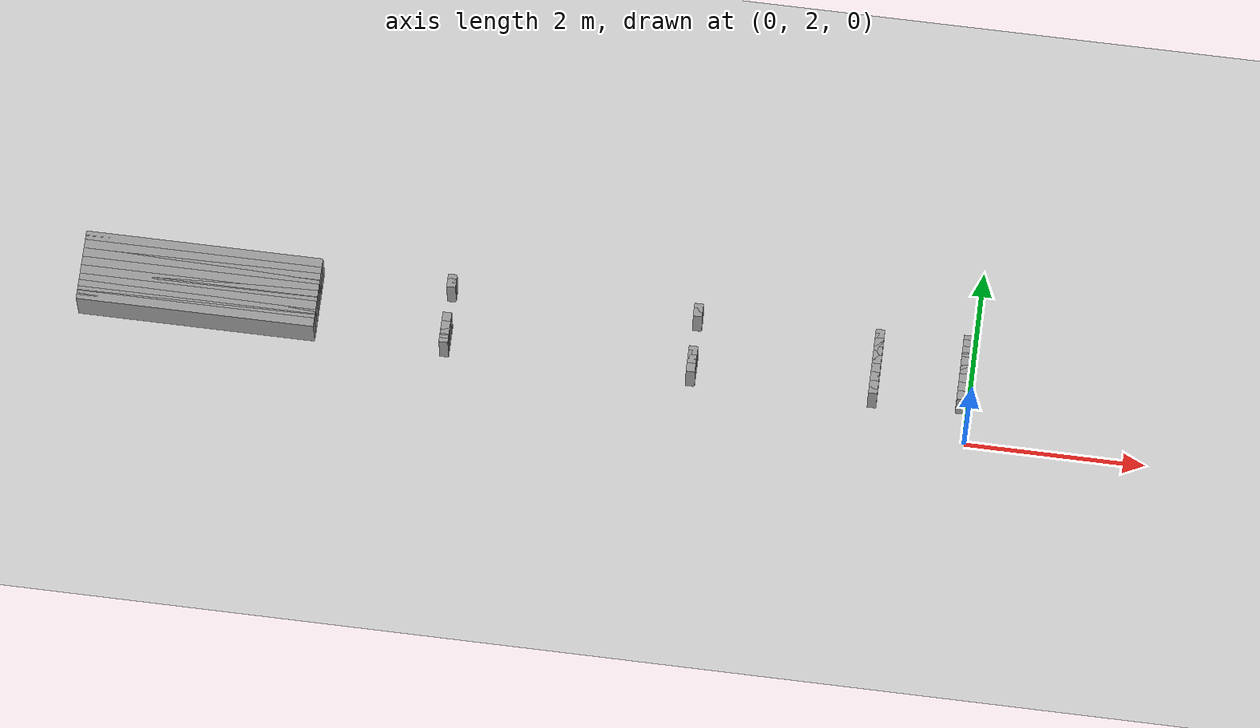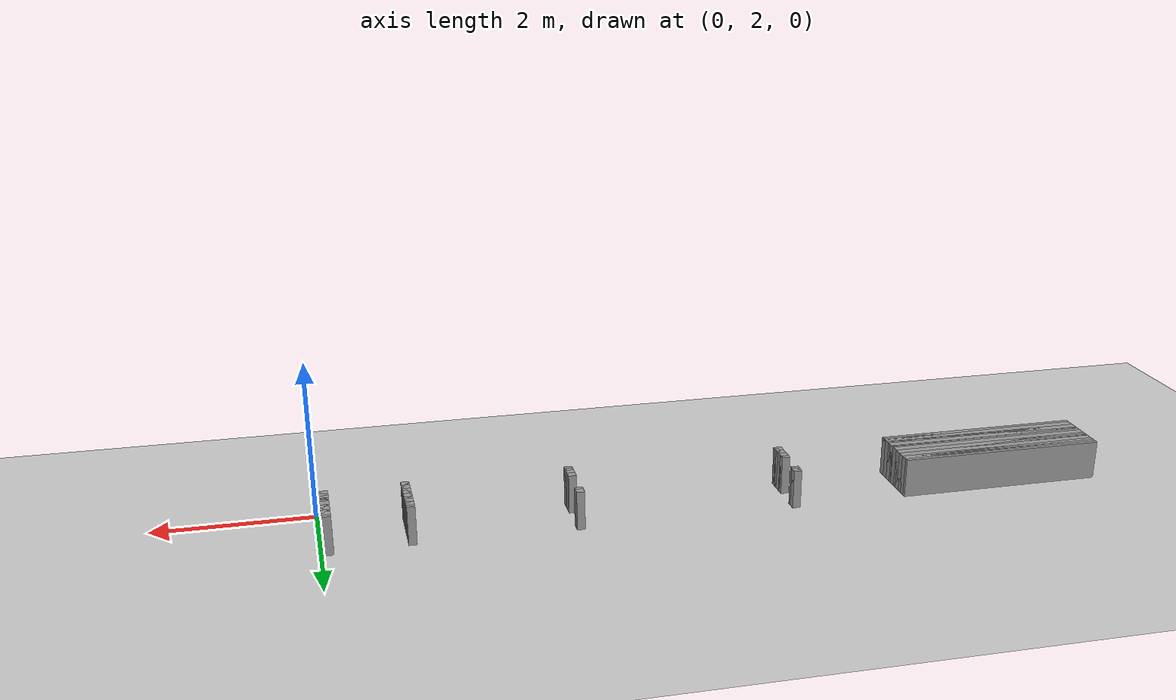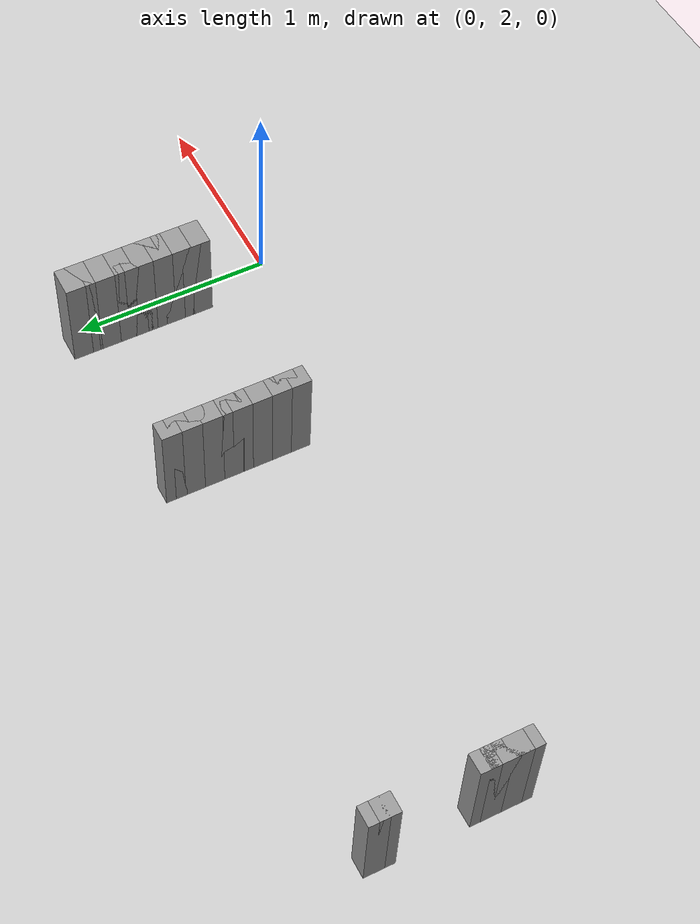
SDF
<sdf version="1.6">
 <world name="GridMap">
  <include><uri>model://sun</uri></include>
  <include><uri>model://ground_plane</uri></include>
  <model name="GridMap">
   <link name="Wall_(21.5,47.0)">
    <collision name="Wall_(21.5,47.0)_Collision">
     <geometry><box><size>0.1 0.1 0.5</size></box></geometry>
     <pose>-1.075 2.35 0.25 0 -0 0</pose>
    </collision>
    <inertial>
     <mass>0.5</mass>
     <pose>0 0.01 0 0 0 0</pose>
     <inertia><ixx>0.004</ixx><ixy>0.001</ixy><ixz>0</ixz><iyy>0.006</iyy><iyz>0</iyz><izz>0.007</izz></inertia>
    </inertial>
    <visual name="Wall_(21.5,47.0)_Visual">
     <geometry><box><size>0.1 0.1 0.5</size></box></geometry>
     <pose>-1.075 2.35 0.25 0 -0 0</pose>
     <material>
      <script><uri>file://media/materials/scripts/gazebo.material</uri><name>Gazebo/Grey</name></script>
      <ambient>1 1 1 1</ambient>
     </material>
     <meta><layer>0</layer></meta>
    </visual>
   </link>
   <link name="Wall_(62.0,47.0)">
    <collision name="Wall_(62.0,47.0)_Collision">
     <geometry><box><size>0.1 0.1 0.5</size></box></geometry>
     <pose>-3.1 2.35 0.25 0 -0 0</pose>
    </collision>
    <inertial>
     <mass>0.5</mass>
     <pose>0 0.01 0 0 0 0</pose>
     <inertia><ixx>0.004</ixx><ixy>0.001</ixy><ixz>0</ixz><iyy>0.006</iyy><iyz>0</iyz><izz>0.007</izz></inertia>
    </inertial>
    <visual name="Wall_(62.0,47.0)_Visual">
     <geometry><box><size>0.1 0.1 0.5</size></box></geometry>
     <pose>-3.1 2.35 0.25 0 -0 0</pose>
     <material>
      <script><uri>file://media/materials/scripts/gazebo.material</uri><name>Gazebo/Grey</name></script>
      <ambient>1 1 1 1</ambient>
     </material>
     <meta><layer>0</layer></meta>
    </visual>
   </link>
   <link name="Wall_(117.0,47.0)">
    <collision name="Wall_(117.0,47.0)_Collision">
     <geometry><box><size>0.1 0.1 0.5</size></box></geometry>
     <pose>-5.8500000000000005 2.35 0.25 0 -0 0</pose>
    </collision>
    <inertial>
     <mass>0.5</mass>
     <pose>0 0.01 0 0 0 0</pose>
     <inertia><ixx>0.004</ixx><ixy>0.001</ixy><ixz>0</ixz><iyy>0.006</iyy><iyz>0</iyz><izz>0.007</izz></inertia>
    </inertial>
    <visual name="Wall_(117.0,47.0)_Visual">
     <geometry><box><size>0.1 0.1 0.5</size></box></geometry>
     <pose>-5.8500000000000005 2.35 0.25 0 -0 0</pose>
     <material>
      <script><uri>file://media/materials/scripts/gazebo.material</uri><name>Gazebo/Grey</name></script>
      <ambient>1 1 1 1</ambient>
     </material>
     <meta><layer>0</layer></meta>
    </visual>
   </link>
   <link name="Wall_(172.5,47.0)">
    <collision name="Wall_(172.5,47.0)_Collision">
     <geometry><box><size>2.6500000000000004 0.1 0.5</size></box></geometry>
     <pose>-8.625 2.35 0.25 0 -0 0</pose>
    </collision>
    <inertial>
     <mass>0.5</mass>
     <pose>0 0.01 0 0 0 0</pose>
     <inertia><ixx>0.004</ixx><ixy>0.001</ixy><ixz>0</ixz><iyy>0.006</iyy><iyz>0</iyz><izz>0.007</izz></inertia>
    </inertial>
    <visual name="Wall_(172.5,47.0)_Visual">
     <geometry><box><size>2.6500000000000004 0.1 0.5</size></box></geometry>
     <pose>-8.625 2.35 0.25 0 -0 0</pose>
     <material>
      <script><uri>file://media/materials/scripts/gazebo.material</uri><name>Gazebo/Grey</name></script>
      <ambient>1 1 1 1</ambient>
     </material>
     <meta><layer>0</layer></meta>
    </visual>
   </link>
   <link name="Wall_(1.5,48.0)">
    <collision name="Wall_(1.5,48.0)_Collision">
     <geometry><box><size>0.15000000000000002 0.1 0.5</size></box></geometry>
     <pose>-0.07500000000000001 2.4000000000000004 0.25 0 -0 0</pose>
    </collision>
    <inertial>
     <mass>0.5</mass>
     <pose>0 0.01 0 0 0 0</pose>
     <inertia><ixx>0.004</ixx><ixy>0.001</ixy><ixz>0</ixz><iyy>0.006</iyy><iyz>0</iyz><izz>0.007</izz></inertia>
    </inertial>
    <visual name="Wall_(1.5,48.0)_Visual">
     <geometry><box><size>0.15000000000000002 0.1 0.5</size></box></geometry>
     <pose>-0.07500000000000001 2.4000000000000004 0.25 0 -0 0</pose>
     <material>
      <script><uri>file://media/materials/scripts/gazebo.material</uri><name>Gazebo/Grey</name></script>
      <ambient>1 1 1 1</ambient>
     </material>
     <meta><layer>0</layer></meta>
    </visual>
   </link>
   <link name="Wall_(21.5,48.0)">
    <collision name="Wall_(21.5,48.0)_Collision">
     <geometry><box><size>0.1 0.1 0.5</size></box></geometry>
     <pose>-1.075 2.4000000000000004 0.25 0 -0 0</pose>
    </collision>
    <inertial>
     <mass>0.5</mass>
     <pose>0 0.01 0 0 0 0</pose>
     <inertia><ixx>0.004</ixx><ixy>0.001</ixy><ixz>0</ixz><iyy>0.006</iyy><iyz>0</iyz><izz>0.007</izz></inertia>
    </inertial>
    <visual name="Wall_(21.5,48.0)_Visual">
     <geometry><box><size>0.1 0.1 0.5</size></box></geometry>
     <pose>-1.075 2.4000000000000004 0.25 0 -0 0</pose>
     <material>
      <script><uri>file://media/materials/scripts/gazebo.material</uri><name>Gazebo/Grey</name></script>
      <ambient>1 1 1 1</ambient>
     </material>
     <meta><layer>0</layer></meta>
    </visual>
   </link>
   <link name="Wall_(62.0,48.0)">
    <collision name="Wall_(62.0,48.0)_Collision">
     <geometry><box><size>0.1 0.1 0.5</size></box></geometry>
     <pose>-3.1 2.4000000000000004 0.25 0 -0 0</pose>
    </collision>
    <inertial>
     <mass>0.5</mass>
     <pose>0 0.01 0 0 0 0</pose>
     <inertia><ixx>0.004</ixx><ixy>0.001</ixy><ixz>0</ixz><iyy>0.006</iyy><iyz>0</iyz><izz>0.007</izz></inertia>
    </inertial>
    <visual name="Wall_(62.0,48.0)_Visual">
     <geometry><box><size>0.1 0.1 0.5</size></box></geometry>
     <pose>-3.1 2.4000000000000004 0.25 0 -0 0</pose>
     <material>
      <script><uri>file://media/materials/scripts/gazebo.material</uri><name>Gazebo/Grey</name></script>
      <ambient>1 1 1 1</ambient>
     </material>
     <meta><layer>0</layer></meta>
    </visual>
   </link>
   <link name="Wall_(117.0,48.0)">
    <collision name="Wall_(117.0,48.0)_Collision">
     <geometry><box><size>0.1 0.1 0.5</size></box></geometry>
     <pose>-5.8500000000000005 2.4000000000000004 0.25 0 -0 0</pose>
    </collision>
    <inertial>
     <mass>0.5</mass>
     <pose>0 0.01 0 0 0 0</pose>
     <inertia><ixx>0.004</ixx><ixy>0.001</ixy><ixz>0</ixz><iyy>0.006</iyy><iyz>0</iyz><izz>0.007</izz></inertia>
    </inertial>
    <visual name="Wall_(117.0,48.0)_Visual">
     <geometry><box><size>0.1 0.1 0.5</size></box></geometry>
     <pose>-5.8500000000000005 2.4000000000000004 0.25 0 -0 0</pose>
     <material>
      <script><uri>file://media/materials/scripts/gazebo.material</uri><name>Gazebo/Grey</name></script>
      <ambient>1 1 1 1</ambient>
     </material>
     <meta><layer>0</layer></meta>
    </visual>
   </link>
   <link name="Wall_(172.5,48.0)">
    <collision name="Wall_(172.5,48.0)_Collision">
     <geometry><box><size>2.6500000000000004 0.1 0.5</size></box></geometry>
     <pose>-8.625 2.4000000000000004 0.25 0 -0 0</pose>
    </collision>
    <inertial>
     <mass>0.5</mass>
     <pose>0 0.01 0 0 0 0</pose>
     <inertia><ixx>0.004</ixx><ixy>0.001</ixy><ixz>0</ixz><iyy>0.006</iyy><iyz>0</iyz><izz>0.007</izz></inertia>
    </inertial>
    <visual name="Wall_(172.5,48.0)_Visual">
     <geometry><box><size>2.6500000000000004 0.1 0.5</size></box></geometry>
     <pose>-8.625 2.4000000000000004 0.25 0 -0 0</pose>
     <material>
      <script><uri>file://media/materials/scripts/gazebo.material</uri><name>Gazebo/Grey</name></script>
      <ambient>1 1 1 1</ambient>
     </material>
     <meta><layer>0</layer></meta>
    </visual>
   </link>
   <link name="Wall_(1.5,49.0)">
    <collision name="Wall_(1.5,49.0)_Collision">
     <geometry><box><size>0.15000000000000002 0.1 0.5</size></box></geometry>
     <pose>-0.07500000000000001 2.45 0.25 0 -0 0</pose>
    </collision>
    <inertial>
     <mass>0.5</mass>
     <pose>0 0.01 0 0 0 0</pose>
     <inertia><ixx>0.004</ixx><ixy>0.001</ixy><ixz>0</ixz><iyy>0.006</iyy><iyz>0</iyz><izz>0.007</izz></inertia>
    </inertial>
    <visual name="Wall_(1.5,49.0)_Visual">
     <geometry><box><size>0.15000000000000002 0.1 0.5</size></box></geometry>
     <pose>-0.07500000000000001 2.45 0.25 0 -0 0</pose>
     <material>
      <script><uri>file://media/materials/scripts/gazebo.material</uri><name>Gazebo/Grey</name></script>
      <ambient>1 1 1 1</ambient>
     </material>
     <meta><layer>0</layer></meta>
    </visual>
   </link>
   <link name="Wall_(21.5,49.0)">
    <collision name="Wall_(21.5,49.0)_Collision">
     <geometry><box><size>0.1 0.1 0.5</size></box></geometry>
     <pose>-1.075 2.45 0.25 0 -0 0</pose>
    </collision>
    <inertial>
     <mass>0.5</mass>
     <pose>0 0.01 0 0 0 0</pose>
     <inertia><ixx>0.004</ixx><ixy>0.001</ixy><ixz>0</ixz><iyy>0.006</iyy><iyz>0</iyz><izz>0.007</izz></inertia>
    </inertial>
    <visual name="Wall_(21.5,49.0)_Visual">
     <geometry><box><size>0.1 0.1 0.5</size></box></geometry>
     <pose>-1.075 2.45 0.25 0 -0 0</pose>
     <material>
      <script><uri>file://media/materials/scripts/gazebo.material</uri><name>Gazebo/Grey</name></script>
      <ambient>1 1 1 1</ambient>
     </material>
     <meta><layer>0</layer></meta>
    </visual>
   </link>
   <link name="Wall_(62.0,49.0)">
    <collision name="Wall_(62.0,49.0)_Collision">
     <geometry><box><size>0.1 0.1 0.5</size></box></geometry>
     <pose>-3.1 2.45 0.25 0 -0 0</pose>
    </collision>
    <inertial>
     <mass>0.5</mass>
     <pose>0 0.01 0 0 0 0</pose>
     <inertia><ixx>0.004</ixx><ixy>0.001</ixy><ixz>0</ixz><iyy>0.006</iyy><iyz>0</iyz><izz>0.007</izz></inertia>
    </inertial>
    <visual name="Wall_(62.0,49.0)_Visual">
     <geometry><box><size>0.1 0.1 0.5</size></box></geometry>
     <pose>-3.1 2.45 0.25 0 -0 0</pose>
     <material>
      <script><uri>file://media/materials/scripts/gazebo.material</uri><name>Gazebo/Grey</name></script>
      <ambient>1 1 1 1</ambient>
     </material>
     <meta><layer>0</layer></meta>
    </visual>
   </link>
   <link name="Wall_(117.0,49.0)">
    <collision name="Wall_(117.0,49.0)_Collision">
     <geometry><box><size>0.1 0.1 0.5</size></box></geometry>
     <pose>-5.8500000000000005 2.45 0.25 0 -0 0</pose>
    </collision>
    <inertial>
     <mass>0.5</mass>
     <pose>0 0.01 0 0 0 0</pose>
     <inertia><ixx>0.004</ixx><ixy>0.001</ixy><ixz>0</ixz><iyy>0.006</iyy><iyz>0</iyz><izz>0.007</izz></inertia>
    </inertial>
    <visual name="Wall_(117.0,49.0)_Visual">
     <geometry><box><size>0.1 0.1 0.5</size></box></geometry>
     <pose>-5.8500000000000005 2.45 0.25 0 -0 0</pose>
     <material>
      <script><uri>file://media/materials/scripts/gazebo.material</uri><name>Gazebo/Grey</name></script>
      <ambient>1 1 1 1</ambient>
     </material>
     <meta><layer>0</layer></meta>
    </visual>
   </link>
   <link name="Wall_(172.5,49.0)">
    <collision name="Wall_(172.5,49.0)_Collision">
     <geometry><box><size>2.6500000000000004 0.1 0.5</size></box></geometry>
     <pose>-8.625 2.45 0.25 0 -0 0</pose>
    </collision>
    <inertial>
     <mass>0.5</mass>
     <pose>0 0.01 0 0 0 0</pose>
     <inertia><ixx>0.004</ixx><ixy>0.001</ixy><ixz>0</ixz><iyy>0.006</iyy><iyz>0</iyz><izz>0.007</izz></inertia>
    </inertial>
    <visual name="Wall_(172.5,49.0)_Visual">
     <geometry><box><size>2.6500000000000004 0.1 0.5</size></box></geometry>
     <pose>-8.625 2.45 0.25 0 -0 0</pose>
     <material>
      <script><uri>file://media/materials/scripts/gazebo.material</uri><name>Gazebo/Grey</name></script>
      <ambient>1 1 1 1</ambient>
     </material>
     <meta><layer>0</layer></meta>
    </visual>
   </link>
   <link name="Wall_(1.5,50.0)">
    <collision name="Wall_(1.5,50.0)_Collision">
     <geometry><box><size>0.15000000000000002 0.1 0.5</size></box></geometry>
     <pose>-0.07500000000000001 2.5 0.25 0 -0 0</pose>
    </collision>
    <inertial>
     <mass>0.5</mass>
     <pose>0 0.01 0 0 0 0</pose>
     <inertia><ixx>0.004</ixx><ixy>0.001</ixy><ixz>0</ixz><iyy>0.006</iyy><iyz>0</iyz><izz>0.007</izz></inertia>
    </inertial>
    <visual name="Wall_(1.5,50.0)_Visual">
     <geometry><box><size>0.15000000000000002 0.1 0.5</size></box></geometry>
     <pose>-0.07500000000000001 2.5 0.25 0 -0 0</pose>
     <material>
      <script><uri>file://media/materials/scripts/gazebo.material</uri><name>Gazebo/Grey</name></script>
      <ambient>1 1 1 1</ambient>
     </material>
     <meta><layer>0</layer></meta>
    </visual>
   </link>
   <link name="Wall_(21.5,50.0)">
    <collision name="Wall_(21.5,50.0)_Collision">
     <geometry><box><size>0.1 0.1 0.5</size></box></geometry>
     <pose>-1.075 2.5 0.25 0 -0 0</pose>
    </collision>
    <inertial>
     <mass>0.5</mass>
     <pose>0 0.01 0 0 0 0</pose>
     <inertia><ixx>0.004</ixx><ixy>0.001</ixy><ixz>0</ixz><iyy>0.006</iyy><iyz>0</iyz><izz>0.007</izz></inertia>
    </inertial>
    <visual name="Wall_(21.5,50.0)_Visual">
     <geometry><box><size>0.1 0.1 0.5</size></box></geometry>
     <pose>-1.075 2.5 0.25 0 -0 0</pose>
     <material>
      <script><uri>file://media/materials/scripts/gazebo.material</uri><name>Gazebo/Grey</name></script>
      <ambient>1 1 1 1</ambient>
     </material>
     <meta><layer>0</layer></meta>
    </visual>
   </link>
   <link name="Wall_(62.0,50.0)">
    <collision name="Wall_(62.0,50.0)_Collision">
     <geometry><box><size>0.1 0.1 0.5</size></box></geometry>
     <pose>-3.1 2.5 0.25 0 -0 0</pose>
    </collision>
    <inertial>
     <mass>0.5</mass>
     <pose>0 0.01 0 0 0 0</pose>
     <inertia><ixx>0.004</ixx><ixy>0.001</ixy><ixz>0</ixz><iyy>0.006</iyy><iyz>0</iyz><izz>0.007</izz></inertia>
    </inertial>
    <visual name="Wall_(62.0,50.0)_Visual">
     <geometry><box><size>0.1 0.1 0.5</size></box></geometry>
     <pose>-3.1 2.5 0.25 0 -0 0</pose>
     <material>
      <script><uri>file://media/materials/scripts/gazebo.material</uri><name>Gazebo/Grey</name></script>
      <ambient>1 1 1 1</ambient>
     </material>
     <meta><layer>0</layer></meta>
    </visual>
   </link>
   <link name="Wall_(117.0,50.0)">
    <collision name="Wall_(117.0,50.0)_Collision">
     <geometry><box><size>0.1 0.1 0.5</size></box></geometry>
     <pose>-5.8500000000000005 2.5 0.25 0 -0 0</pose>
    </collision>
    <inertial>
     <mass>0.5</mass>
     <pose>0 0.01 0 0 0 0</pose>
     <inertia><ixx>0.004</ixx><ixy>0.001</ixy><ixz>0</ixz><iyy>0.006</iyy><iyz>0</iyz><izz>0.007</izz></inertia>
    </inertial>
    <visual name="Wall_(117.0,50.0)_Visual">
     <geometry><box><size>0.1 0.1 0.5</size></box></geometry>
     <pose>-5.8500000000000005 2.5 0.25 0 -0 0</pose>
     <material>
      <script><uri>file://media/materials/scripts/gazebo.material</uri><name>Gazebo/Grey</name></script>
      <ambient>1 1 1 1</ambient>
     </material>
     <meta><layer>0</layer></meta>
    </visual>
   </link>
   <link name="Wall_(172.5,50.0)">
    <collision name="Wall_(172.5,50.0)_Collision">
     <geometry><box><size>2.6500000000000004 0.1 0.5</size></box></geometry>
     <pose>-8.625 2.5 0.25 0 -0 0</pose>
    </collision>
    <inertial>
     <mass>0.5</mass>
     <pose>0 0.01 0 0 0 0</pose>
     <inertia><ixx>0.004</ixx><ixy>0.001</ixy><ixz>0</ixz><iyy>0.006</iyy><iyz>0</iyz><izz>0.007</izz></inertia>
    </inertial>
    <visual name="Wall_(172.5,50.0)_Visual">
     <geometry><box><size>2.6500000000000004 0.1 0.5</size></box></geometry>
     <pose>-8.625 2.5 0.25 0 -0 0</pose>
     <material>
      <script><uri>file://media/materials/scripts/gazebo.material</uri><name>Gazebo/Grey</name></script>
      <ambient>1 1 1 1</ambient>
     </material>
     <meta><layer>0</layer></meta>
    </visual>
   </link>
   <link name="Wall_(1.5,51.0)">
    <collision name="Wall_(1.5,51.0)_Collision">
     <geometry><box><size>0.15000000000000002 0.1 0.5</size></box></geometry>
     <pose>-0.07500000000000001 2.5500000000000003 0.25 0 -0 0</pose>
    </collision>
    <inertial>
     <mass>0.5</mass>
     <pose>0 0.01 0 0 0 0</pose>
     <inertia><ixx>0.004</ixx><ixy>0.001</ixy><ixz>0</ixz><iyy>0.006</iyy><iyz>0</iyz><izz>0.007</izz></inertia>
    </inertial>
    <visual name="Wall_(1.5,51.0)_Visual">
     <geometry><box><size>0.15000000000000002 0.1 0.5</size></box></geometry>
     <pose>-0.07500000000000001 2.5500000000000003 0.25 0 -0 0</pose>
     <material>
      <script><uri>file://media/materials/scripts/gazebo.material</uri><name>Gazebo/Grey</name></script>
      <ambient>1 1 1 1</ambient>
     </material>
     <meta><layer>0</layer></meta>
    </visual>
   </link>
   <link name="Wall_(21.5,51.0)">
    <collision name="Wall_(21.5,51.0)_Collision">
     <geometry><box><size>0.1 0.1 0.5</size></box></geometry>
     <pose>-1.075 2.5500000000000003 0.25 0 -0 0</pose>
    </collision>
    <inertial>
     <mass>0.5</mass>
     <pose>0 0.01 0 0 0 0</pose>
     <inertia><ixx>0.004</ixx><ixy>0.001</ixy><ixz>0</ixz><iyy>0.006</iyy><iyz>0</iyz><izz>0.007</izz></inertia>
    </inertial>
    <visual name="Wall_(21.5,51.0)_Visual">
     <geometry><box><size>0.1 0.1 0.5</size></box></geometry>
     <pose>-1.075 2.5500000000000003 0.25 0 -0 0</pose>
     <material>
      <script><uri>file://media/materials/scripts/gazebo.material</uri><name>Gazebo/Grey</name></script>
      <ambient>1 1 1 1</ambient>
     </material>
     <meta><layer>0</layer></meta>
    </visual>
   </link>
   <link name="Wall_(62.0,51.0)">
    <collision name="Wall_(62.0,51.0)_Collision">
     <geometry><box><size>0.1 0.1 0.5</size></box></geometry>
     <pose>-3.1 2.5500000000000003 0.25 0 -0 0</pose>
    </collision>
    <inertial>
     <mass>0.5</mass>
     <pose>0 0.01 0 0 0 0</pose>
     <inertia><ixx>0.004</ixx><ixy>0.001</ixy><ixz>0</ixz><iyy>0.006</iyy><iyz>0</iyz><izz>0.007</izz></inertia>
    </inertial>
    <visual name="Wall_(62.0,51.0)_Visual">
     <geometry><box><size>0.1 0.1 0.5</size></box></geometry>
     <pose>-3.1 2.5500000000000003 0.25 0 -0 0</pose>
     <material>
      <script><uri>file://media/materials/scripts/gazebo.material</uri><name>Gazebo/Grey</name></script>
      <ambient>1 1 1 1</ambient>
     </material>
     <meta><layer>0</layer></meta>
    </visual>
   </link>
   <link name="Wall_(117.0,51.0)">
    <collision name="Wall_(117.0,51.0)_Collision">
     <geometry><box><size>0.1 0.1 0.5</size></box></geometry>
     <pose>-5.8500000000000005 2.5500000000000003 0.25 0 -0 0</pose>
    </collision>
    <inertial>
     <mass>0.5</mass>
     <pose>0 0.01 0 0 0 0</pose>
     <inertia><ixx>0.004</ixx><ixy>0.001</ixy><ixz>0</ixz><iyy>0.006</iyy><iyz>0</iyz><izz>0.007</izz></inertia>
    </inertial>
    <visual name="Wall_(117.0,51.0)_Visual">
     <geometry><box><size>0.1 0.1 0.5</size></box></geometry>
     <pose>-5.8500000000000005 2.5500000000000003 0.25 0 -0 0</pose>
     <material>
      <script><uri>file://media/materials/scripts/gazebo.material</uri><name>Gazebo/Grey</name></script>
      <ambient>1 1 1 1</ambient>
     </material>
     <meta><layer>0</layer></meta>
    </visual>
   </link>
   <link name="Wall_(172.5,51.0)">
    <collision name="Wall_(172.5,51.0)_Collision">
     <geometry><box><size>2.6500000000000004 0.1 0.5</size></box></geometry>
     <pose>-8.625 2.5500000000000003 0.25 0 -0 0</pose>
    </collision>
    <inertial>
     <mass>0.5</mass>
     <pose>0 0.01 0 0 0 0</pose>
     <inertia><ixx>0.004</ixx><ixy>0.001</ixy><ixz>0</ixz><iyy>0.006</iyy><iyz>0</iyz><izz>0.007</izz></inertia>
    </inertial>
    <visual name="Wall_(172.5,51.0)_Visual">
     <geometry><box><size>2.6500000000000004 0.1 0.5</size></box></geometry>
     <pose>-8.625 2.5500000000000003 0.25 0 -0 0</pose>
     <material>
      <script><uri>file://media/materials/scripts/gazebo.material</uri><name>Gazebo/Grey</name></script>
      <ambient>1 1 1 1</ambient>
     </material>
     <meta><layer>0</layer></meta>
    </visual>
   </link>
   <link name="Wall_(1.5,52.0)">
    <collision name="Wall_(1.5,52.0)_Collision">
     <geometry><box><size>0.15000000000000002 0.1 0.5</size></box></geometry>
     <pose>-0.07500000000000001 2.6 0.25 0 -0 0</pose>
    </collision>
    <inertial>
     <mass>0.5</mass>
     <pose>0 0.01 0 0 0 0</pose>
     <inertia><ixx>0.004</ixx><ixy>0.001</ixy><ixz>0</ixz><iyy>0.006</iyy><iyz>0</iyz><izz>0.007</izz></inertia>
    </inertial>
    <visual name="Wall_(1.5,52.0)_Visual">
     <geometry><box><size>0.15000000000000002 0.1 0.5</size></box></geometry>
     <pose>-0.07500000000000001 2.6 0.25 0 -0 0</pose>
     <material>
      <script><uri>file://media/materials/scripts/gazebo.material</uri><name>Gazebo/Grey</name></script>
      <ambient>1 1 1 1</ambient>
     </material>
     <meta><layer>0</layer></meta>
    </visual>
   </link>
   <link name="Wall_(21.5,52.0)">
    <collision name="Wall_(21.5,52.0)_Collision">
     <geometry><box><size>0.1 0.1 0.5</size></box></geometry>
     <pose>-1.075 2.6 0.25 0 -0 0</pose>
    </collision>
    <inertial>
     <mass>0.5</mass>
     <pose>0 0.01 0 0 0 0</pose>
     <inertia><ixx>0.004</ixx><ixy>0.001</ixy><ixz>0</ixz><iyy>0.006</iyy><iyz>0</iyz><izz>0.007</izz></inertia>
    </inertial>
    <visual name="Wall_(21.5,52.0)_Visual">
     <geometry><box><size>0.1 0.1 0.5</size></box></geometry>
     <pose>-1.075 2.6 0.25 0 -0 0</pose>
     <material>
      <script><uri>file://media/materials/scripts/gazebo.material</uri><name>Gazebo/Grey</name></script>
      <ambient>1 1 1 1</ambient>
     </material>
     <meta><layer>0</layer></meta>
    </visual>
   </link>
   <link name="Wall_(117.0,52.0)">
    <collision name="Wall_(117.0,52.0)_Collision">
     <geometry><box><size>0.1 0.1 0.5</size></box></geometry>
     <pose>-5.8500000000000005 2.6 0.25 0 -0 0</pose>
    </collision>
    <inertial>
     <mass>0.5</mass>
     <pose>0 0.01 0 0 0 0</pose>
     <inertia><ixx>0.004</ixx><ixy>0.001</ixy><ixz>0</ixz><iyy>0.006</iyy><iyz>0</iyz><izz>0.007</izz></inertia>
    </inertial>
    <visual name="Wall_(117.0,52.0)_Visual">
     <geometry><box><size>0.1 0.1 0.5</size></box></geometry>
     <pose>-5.8500000000000005 2.6 0.25 0 -0 0</pose>
     <material>
      <script><uri>file://media/materials/scripts/gazebo.material</uri><name>Gazebo/Grey</name></script>
      <ambient>1 1 1 1</ambient>
     </material>
     <meta><layer>0</layer></meta>
    </visual>
   </link>
   <link name="Wall_(172.5,52.0)">
    <collision name="Wall_(172.5,52.0)_Collision">
     <geometry><box><size>2.6500000000000004 0.1 0.5</size></box></geometry>
     <pose>-8.625 2.6 0.25 0 -0 0</pose>
    </collision>
    <inertial>
     <mass>0.5</mass>
     <pose>0 0.01 0 0 0 0</pose>
     <inertia><ixx>0.004</ixx><ixy>0.001</ixy><ixz>0</ixz><iyy>0.006</iyy><iyz>0</iyz><izz>0.007</izz></inertia>
    </inertial>
    <visual name="Wall_(172.5,52.0)_Visual">
     <geometry><box><size>2.6500000000000004 0.1 0.5</size></box></geometry>
     <pose>-8.625 2.6 0.25 0 -0 0</pose>
     <material>
      <script><uri>file://media/materials/scripts/gazebo.material</uri><name>Gazebo/Grey</name></script>
      <ambient>1 1 1 1</ambient>
     </material>
     <meta><layer>0</layer></meta>
    </visual>
   </link>
   <link name="Wall_(1.5,53.0)">
    <collision name="Wall_(1.5,53.0)_Collision">
     <geometry><box><size>0.15000000000000002 0.1 0.5</size></box></geometry>
     <pose>-0.07500000000000001 2.6500000000000004 0.25 0 -0 0</pose>
    </collision>
    <inertial>
     <mass>0.5</mass>
     <pose>0 0.01 0 0 0 0</pose>
     <inertia><ixx>0.004</ixx><ixy>0.001</ixy><ixz>0</ixz><iyy>0.006</iyy><iyz>0</iyz><izz>0.007</izz></inertia>
    </inertial>
    <visual name="Wall_(1.5,53.0)_Visual">
     <geometry><box><size>0.15000000000000002 0.1 0.5</size></box></geometry>
     <pose>-0.07500000000000001 2.6500000000000004 0.25 0 -0 0</pose>
     <material>
      <script><uri>file://media/materials/scripts/gazebo.material</uri><name>Gazebo/Grey</name></script>
      <ambient>1 1 1 1</ambient>
     </material>
     <meta><layer>0</layer></meta>
    </visual>
   </link>
   <link name="Wall_(21.5,53.0)">
    <collision name="Wall_(21.5,53.0)_Collision">
     <geometry><box><size>0.1 0.1 0.5</size></box></geometry>
     <pose>-1.075 2.6500000000000004 0.25 0 -0 0</pose>
    </collision>
    <inertial>
     <mass>0.5</mass>
     <pose>0 0.01 0 0 0 0</pose>
     <inertia><ixx>0.004</ixx><ixy>0.001</ixy><ixz>0</ixz><iyy>0.006</iyy><iyz>0</iyz><izz>0.007</izz></inertia>
    </inertial>
    <visual name="Wall_(21.5,53.0)_Visual">
     <geometry><box><size>0.1 0.1 0.5</size></box></geometry>
     <pose>-1.075 2.6500000000000004 0.25 0 -0 0</pose>
     <material>
      <script><uri>file://media/materials/scripts/gazebo.material</uri><name>Gazebo/Grey</name></script>
      <ambient>1 1 1 1</ambient>
     </material>
     <meta><layer>0</layer></meta>
    </visual>
   </link>
   <link name="Wall_(172.5,53.0)">
    <collision name="Wall_(172.5,53.0)_Collision">
     <geometry><box><size>2.6500000000000004 0.1 0.5</size></box></geometry>
     <pose>-8.625 2.6500000000000004 0.25 0 -0 0</pose>
    </collision>
    <inertial>
     <mass>0.5</mass>
     <pose>0 0.01 0 0 0 0</pose>
     <inertia><ixx>0.004</ixx><ixy>0.001</ixy><ixz>0</ixz><iyy>0.006</iyy><iyz>0</iyz><izz>0.007</izz></inertia>
    </inertial>
    <visual name="Wall_(172.5,53.0)_Visual">
     <geometry><box><size>2.6500000000000004 0.1 0.5</size></box></geometry>
     <pose>-8.625 2.6500000000000004 0.25 0 -0 0</pose>
     <material>
      <script><uri>file://media/materials/scripts/gazebo.material</uri><name>Gazebo/Grey</name></script>
      <ambient>1 1 1 1</ambient>
     </material>
     <meta><layer>0</layer></meta>
    </visual>
   </link>
   <link name="Wall_(1.5,54.0)">
    <collision name="Wall_(1.5,54.0)_Collision">
     <geometry><box><size>0.15000000000000002 0.1 0.5</size></box></geometry>
     <pose>-0.07500000000000001 2.7 0.25 0 -0 0</pose>
    </collision>
    <inertial>
     <mass>0.5</mass>
     <pose>0 0.01 0 0 0 0</pose>
     <inertia><ixx>0.004</ixx><ixy>0.001</ixy><ixz>0</ixz><iyy>0.006</iyy><iyz>0</iyz><izz>0.007</izz></inertia>
    </inertial>
    <visual name="Wall_(1.5,54.0)_Visual">
     <geometry><box><size>0.15000000000000002 0.1 0.5</size></box></geometry>
     <pose>-0.07500000000000001 2.7 0.25 0 -0 0</pose>
     <material>
      <script><uri>file://media/materials/scripts/gazebo.material</uri><name>Gazebo/Grey</name></script>
      <ambient>1 1 1 1</ambient>
     </material>
     <meta><layer>0</layer></meta>
    </visual>
   </link>
   <link name="Wall_(21.5,54.0)">
    <collision name="Wall_(21.5,54.0)_Collision">
     <geometry><box><size>0.1 0.1 0.5</size></box></geometry>
     <pose>-1.075 2.7 0.25 0 -0 0</pose>
    </collision>
    <inertial>
     <mass>0.5</mass>
     <pose>0 0.01 0 0 0 0</pose>
     <inertia><ixx>0.004</ixx><ixy>0.001</ixy><ixz>0</ixz><iyy>0.006</iyy><iyz>0</iyz><izz>0.007</izz></inertia>
    </inertial>
    <visual name="Wall_(21.5,54.0)_Visual">
     <geometry><box><size>0.1 0.1 0.5</size></box></geometry>
     <pose>-1.075 2.7 0.25 0 -0 0</pose>
     <material>
      <script><uri>file://media/materials/scripts/gazebo.material</uri><name>Gazebo/Grey</name></script>
      <ambient>1 1 1 1</ambient>
     </material>
     <meta><layer>0</layer></meta>
    </visual>
   </link>
   <link name="Wall_(172.5,54.0)">
    <collision name="Wall_(172.5,54.0)_Collision">
     <geometry><box><size>2.6500000000000004 0.1 0.5</size></box></geometry>
     <pose>-8.625 2.7 0.25 0 -0 0</pose>
    </collision>
    <inertial>
     <mass>0.5</mass>
     <pose>0 0.01 0 0 0 0</pose>
     <inertia><ixx>0.004</ixx><ixy>0.001</ixy><ixz>0</ixz><iyy>0.006</iyy><iyz>0</iyz><izz>0.007</izz></inertia>
    </inertial>
    <visual name="Wall_(172.5,54.0)_Visual">
     <geometry><box><size>2.6500000000000004 0.1 0.5</size></box></geometry>
     <pose>-8.625 2.7 0.25 0 -0 0</pose>
     <material>
      <script><uri>file://media/materials/scripts/gazebo.material</uri><name>Gazebo/Grey</name></script>
      <ambient>1 1 1 1</ambient>
     </material>
     <meta><layer>0</layer></meta>
    </visual>
   </link>
   <link name="Wall_(1.5,55.0)">
    <collision name="Wall_(1.5,55.0)_Collision">
     <geometry><box><size>0.15000000000000002 0.1 0.5</size></box></geometry>
     <pose>-0.07500000000000001 2.75 0.25 0 -0 0</pose>
    </collision>
    <inertial>
     <mass>0.5</mass>
     <pose>0 0.01 0 0 0 0</pose>
     <inertia><ixx>0.004</ixx><ixy>0.001</ixy><ixz>0</ixz><iyy>0.006</iyy><iyz>0</iyz><izz>0.007</izz></inertia>
    </inertial>
    <visual name="Wall_(1.5,55.0)_Visual">
     <geometry><box><size>0.15000000000000002 0.1 0.5</size></box></geometry>
     <pose>-0.07500000000000001 2.75 0.25 0 -0 0</pose>
     <material>
      <script><uri>file://media/materials/scripts/gazebo.material</uri><name>Gazebo/Grey</name></script>
      <ambient>1 1 1 1</ambient>
     </material>
     <meta><layer>0</layer></meta>
    </visual>
   </link>
   <link name="Wall_(21.5,55.0)">
    <collision name="Wall_(21.5,55.0)_Collision">
     <geometry><box><size>0.1 0.1 0.5</size></box></geometry>
     <pose>-1.075 2.75 0.25 0 -0 0</pose>
    </collision>
    <inertial>
     <mass>0.5</mass>
     <pose>0 0.01 0 0 0 0</pose>
     <inertia><ixx>0.004</ixx><ixy>0.001</ixy><ixz>0</ixz><iyy>0.006</iyy><iyz>0</iyz><izz>0.007</izz></inertia>
    </inertial>
    <visual name="Wall_(21.5,55.0)_Visual">
     <geometry><box><size>0.1 0.1 0.5</size></box></geometry>
     <pose>-1.075 2.75 0.25 0 -0 0</pose>
     <material>
      <script><uri>file://media/materials/scripts/gazebo.material</uri><name>Gazebo/Grey</name></script>
      <ambient>1 1 1 1</ambient>
     </material>
     <meta><layer>0</layer></meta>
    </visual>
   </link>
   <link name="Wall_(172.5,55.0)">
    <collision name="Wall_(172.5,55.0)_Collision">
     <geometry><box><size>2.6500000000000004 0.1 0.5</size></box></geometry>
     <pose>-8.625 2.75 0.25 0 -0 0</pose>
    </collision>
    <inertial>
     <mass>0.5</mass>
     <pose>0 0.01 0 0 0 0</pose>
     <inertia><ixx>0.004</ixx><ixy>0.001</ixy><ixz>0</ixz><iyy>0.006</iyy><iyz>0</iyz><izz>0.007</izz></inertia>
    </inertial>
    <visual name="Wall_(172.5,55.0)_Visual">
     <geometry><box><size>2.6500000000000004 0.1 0.5</size></box></geometry>
     <pose>-8.625 2.75 0.25 0 -0 0</pose>
     <material>
      <script><uri>file://media/materials/scripts/gazebo.material</uri><name>Gazebo/Grey</name></script>
      <ambient>1 1 1 1</ambient>
     </material>
     <meta><layer>0</layer></meta>
    </visual>
   </link>
   <link name="Wall_(1.5,56.0)">
    <collision name="Wall_(1.5,56.0)_Collision">
     <geometry><box><size>0.15000000000000002 0.1 0.5</size></box></geometry>
     <pose>-0.07500000000000001 2.8000000000000003 0.25 0 -0 0</pose>
    </collision>
    <inertial>
     <mass>0.5</mass>
     <pose>0 0.01 0 0 0 0</pose>
     <inertia><ixx>0.004</ixx><ixy>0.001</ixy><ixz>0</ixz><iyy>0.006</iyy><iyz>0</iyz><izz>0.007</izz></inertia>
    </inertial>
    <visual name="Wall_(1.5,56.0)_Visual">
     <geometry><box><size>0.15000000000000002 0.1 0.5</size></box></geometry>
     <pose>-0.07500000000000001 2.8000000000000003 0.25 0 -0 0</pose>
     <material>
      <script><uri>file://media/materials/scripts/gazebo.material</uri><name>Gazebo/Grey</name></script>
      <ambient>1 1 1 1</ambient>
     </material>
     <meta><layer>0</layer></meta>
    </visual>
   </link>
   <link name="Wall_(21.5,56.0)">
    <collision name="Wall_(21.5,56.0)_Collision">
     <geometry><box><size>0.1 0.1 0.5</size></box></geometry>
     <pose>-1.075 2.8000000000000003 0.25 0 -0 0</pose>
    </collision>
    <inertial>
     <mass>0.5</mass>
     <pose>0 0.01 0 0 0 0</pose>
     <inertia><ixx>0.004</ixx><ixy>0.001</ixy><ixz>0</ixz><iyy>0.006</iyy><iyz>0</iyz><izz>0.007</izz></inertia>
    </inertial>
    <visual name="Wall_(21.5,56.0)_Visual">
     <geometry><box><size>0.1 0.1 0.5</size></box></geometry>
     <pose>-1.075 2.8000000000000003 0.25 0 -0 0</pose>
     <material>
      <script><uri>file://media/materials/scripts/gazebo.material</uri><name>Gazebo/Grey</name></script>
      <ambient>1 1 1 1</ambient>
     </material>
     <meta><layer>0</layer></meta>
    </visual>
   </link>
   <link name="Wall_(172.5,56.0)">
    <collision name="Wall_(172.5,56.0)_Collision">
     <geometry><box><size>2.6500000000000004 0.1 0.5</size></box></geometry>
     <pose>-8.625 2.8000000000000003 0.25 0 -0 0</pose>
    </collision>
    <inertial>
     <mass>0.5</mass>
     <pose>0 0.01 0 0 0 0</pose>
     <inertia><ixx>0.004</ixx><ixy>0.001</ixy><ixz>0</ixz><iyy>0.006</iyy><iyz>0</iyz><izz>0.007</izz></inertia>
    </inertial>
    <visual name="Wall_(172.5,56.0)_Visual">
     <geometry><box><size>2.6500000000000004 0.1 0.5</size></box></geometry>
     <pose>-8.625 2.8000000000000003 0.25 0 -0 0</pose>
     <material>
      <script><uri>file://media/materials/scripts/gazebo.material</uri><name>Gazebo/Grey</name></script>
      <ambient>1 1 1 1</ambient>
     </material>
     <meta><layer>0</layer></meta>
    </visual>
   </link>
   <link name="Wall_(1.5,57.0)">
    <collision name="Wall_(1.5,57.0)_Collision">
     <geometry><box><size>0.15000000000000002 0.1 0.5</size></box></geometry>
     <pose>-0.07500000000000001 2.85 0.25 0 -0 0</pose>
    </collision>
    <inertial>
     <mass>0.5</mass>
     <pose>0 0.01 0 0 0 0</pose>
     <inertia><ixx>0.004</ixx><ixy>0.001</ixy><ixz>0</ixz><iyy>0.006</iyy><iyz>0</iyz><izz>0.007</izz></inertia>
    </inertial>
    <visual name="Wall_(1.5,57.0)_Visual">
     <geometry><box><size>0.15000000000000002 0.1 0.5</size></box></geometry>
     <pose>-0.07500000000000001 2.85 0.25 0 -0 0</pose>
     <material>
      <script><uri>file://media/materials/scripts/gazebo.material</uri><name>Gazebo/Grey</name></script>
      <ambient>1 1 1 1</ambient>
     </material>
     <meta><layer>0</layer></meta>
    </visual>
   </link>
   <link name="Wall_(21.5,57.0)">
    <collision name="Wall_(21.5,57.0)_Collision">
     <geometry><box><size>0.1 0.1 0.5</size></box></geometry>
     <pose>-1.075 2.85 0.25 0 -0 0</pose>
    </collision>
    <inertial>
     <mass>0.5</mass>
     <pose>0 0.01 0 0 0 0</pose>
     <inertia><ixx>0.004</ixx><ixy>0.001</ixy><ixz>0</ixz><iyy>0.006</iyy><iyz>0</iyz><izz>0.007</izz></inertia>
    </inertial>
    <visual name="Wall_(21.5,57.0)_Visual">
     <geometry><box><size>0.1 0.1 0.5</size></box></geometry>
     <pose>-1.075 2.85 0.25 0 -0 0</pose>
     <material>
      <script><uri>file://media/materials/scripts/gazebo.material</uri><name>Gazebo/Grey</name></script>
      <ambient>1 1 1 1</ambient>
     </material>
     <meta><layer>0</layer></meta>
    </visual>
   </link>
   <link name="Wall_(172.5,57.0)">
    <collision name="Wall_(172.5,57.0)_Collision">
     <geometry><box><size>2.6500000000000004 0.1 0.5</size></box></geometry>
     <pose>-8.625 2.85 0.25 0 -0 0</pose>
    </collision>
    <inertial>
     <mass>0.5</mass>
     <pose>0 0.01 0 0 0 0</pose>
     <inertia><ixx>0.004</ixx><ixy>0.001</ixy><ixz>0</ixz><iyy>0.006</iyy><iyz>0</iyz><izz>0.007</izz></inertia>
    </inertial>
    <visual name="Wall_(172.5,57.0)_Visual">
     <geometry><box><size>2.6500000000000004 0.1 0.5</size></box></geometry>
     <pose>-8.625 2.85 0.25 0 -0 0</pose>
     <material>
      <script><uri>file://media/materials/scripts/gazebo.material</uri><name>Gazebo/Grey</name></script>
      <ambient>1 1 1 1</ambient>
     </material>
     <meta><layer>0</layer></meta>
    </visual>
   </link>
   <link name="Wall_(1.5,58.0)">
    <collision name="Wall_(1.5,58.0)_Collision">
     <geometry><box><size>0.15000000000000002 0.1 0.5</size></box></geometry>
     <pose>-0.07500000000000001 2.9000000000000004 0.25 0 -0 0</pose>
    </collision>
    <inertial>
     <mass>0.5</mass>
     <pose>0 0.01 0 0 0 0</pose>
     <inertia><ixx>0.004</ixx><ixy>0.001</ixy><ixz>0</ixz><iyy>0.006</iyy><iyz>0</iyz><izz>0.007</izz></inertia>
    </inertial>
    <visual name="Wall_(1.5,58.0)_Visual">
     <geometry><box><size>0.15000000000000002 0.1 0.5</size></box></geometry>
     <pose>-0.07500000000000001 2.9000000000000004 0.25 0 -0 0</pose>
     <material>
      <script><uri>file://media/materials/scripts/gazebo.material</uri><name>Gazebo/Grey</name></script>
      <ambient>1 1 1 1</ambient>
     </material>
     <meta><layer>0</layer></meta>
    </visual>
   </link>
   <link name="Wall_(21.5,58.0)">
    <collision name="Wall_(21.5,58.0)_Collision">
     <geometry><box><size>0.1 0.1 0.5</size></box></geometry>
     <pose>-1.075 2.9000000000000004 0.25 0 -0 0</pose>
    </collision>
    <inertial>
     <mass>0.5</mass>
     <pose>0 0.01 0 0 0 0</pose>
     <inertia><ixx>0.004</ixx><ixy>0.001</ixy><ixz>0</ixz><iyy>0.006</iyy><iyz>0</iyz><izz>0.007</izz></inertia>
    </inertial>
    <visual name="Wall_(21.5,58.0)_Visual">
     <geometry><box><size>0.1 0.1 0.5</size></box></geometry>
     <pose>-1.075 2.9000000000000004 0.25 0 -0 0</pose>
     <material>
      <script><uri>file://media/materials/scripts/gazebo.material</uri><name>Gazebo/Grey</name></script>
      <ambient>1 1 1 1</ambient>
     </material>
     <meta><layer>0</layer></meta>
    </visual>
   </link>
   <link name="Wall_(172.5,58.0)">
    <collision name="Wall_(172.5,58.0)_Collision">
     <geometry><box><size>2.6500000000000004 0.1 0.5</size></box></geometry>
     <pose>-8.625 2.9000000000000004 0.25 0 -0 0</pose>
    </collision>
    <inertial>
     <mass>0.5</mass>
     <pose>0 0.01 0 0 0 0</pose>
     <inertia><ixx>0.004</ixx><ixy>0.001</ixy><ixz>0</ixz><iyy>0.006</iyy><iyz>0</iyz><izz>0.007</izz></inertia>
    </inertial>
    <visual name="Wall_(172.5,58.0)_Visual">
     <geometry><box><size>2.6500000000000004 0.1 0.5</size></box></geometry>
     <pose>-8.625 2.9000000000000004 0.25 0 -0 0</pose>
     <material>
      <script><uri>file://media/materials/scripts/gazebo.material</uri><name>Gazebo/Grey</name></script>
      <ambient>1 1 1 1</ambient>
     </material>
     <meta><layer>0</layer></meta>
    </visual>
   </link>
   <link name="Wall_(1.5,59.0)">
    <collision name="Wall_(1.5,59.0)_Collision">
     <geometry><box><size>0.15000000000000002 0.1 0.5</size></box></geometry>
     <pose>-0.07500000000000001 2.95 0.25 0 -0 0</pose>
    </collision>
    <inertial>
     <mass>0.5</mass>
     <pose>0 0.01 0 0 0 0</pose>
     <inertia><ixx>0.004</ixx><ixy>0.001</ixy><ixz>0</ixz><iyy>0.006</iyy><iyz>0</iyz><izz>0.007</izz></inertia>
    </inertial>
    <visual name="Wall_(1.5,59.0)_Visual">
     <geometry><box><size>0.15000000000000002 0.1 0.5</size></box></geometry>
     <pose>-0.07500000000000001 2.95 0.25 0 -0 0</pose>
     <material>
      <script><uri>file://media/materials/scripts/gazebo.material</uri><name>Gazebo/Grey</name></script>
      <ambient>1 1 1 1</ambient>
     </material>
     <meta><layer>0</layer></meta>
    </visual>
   </link>
   <link name="Wall_(21.5,59.0)">
    <collision name="Wall_(21.5,59.0)_Collision">
     <geometry><box><size>0.1 0.1 0.5</size></box></geometry>
     <pose>-1.075 2.95 0.25 0 -0 0</pose>
    </collision>
    <inertial>
     <mass>0.5</mass>
     <pose>0 0.01 0 0 0 0</pose>
     <inertia><ixx>0.004</ixx><ixy>0.001</ixy><ixz>0</ixz><iyy>0.006</iyy><iyz>0</iyz><izz>0.007</izz></inertia>
    </inertial>
    <visual name="Wall_(21.5,59.0)_Visual">
     <geometry><box><size>0.1 0.1 0.5</size></box></geometry>
     <pose>-1.075 2.95 0.25 0 -0 0</pose>
     <material>
      <script><uri>file://media/materials/scripts/gazebo.material</uri><name>Gazebo/Grey</name></script>
      <ambient>1 1 1 1</ambient>
     </material>
     <meta><layer>0</layer></meta>
    </visual>
   </link>
   <link name="Wall_(172.5,59.0)">
    <collision name="Wall_(172.5,59.0)_Collision">
     <geometry><box><size>2.6500000000000004 0.1 0.5</size></box></geometry>
     <pose>-8.625 2.95 0.25 0 -0 0</pose>
    </collision>
    <inertial>
     <mass>0.5</mass>
     <pose>0 0.01 0 0 0 0</pose>
     <inertia><ixx>0.004</ixx><ixy>0.001</ixy><ixz>0</ixz><iyy>0.006</iyy><iyz>0</iyz><izz>0.007</izz></inertia>
    </inertial>
    <visual name="Wall_(172.5,59.0)_Visual">
     <geometry><box><size>2.6500000000000004 0.1 0.5</size></box></geometry>
     <pose>-8.625 2.95 0.25 0 -0 0</pose>
     <material>
      <script><uri>file://media/materials/scripts/gazebo.material</uri><name>Gazebo/Grey</name></script>
      <ambient>1 1 1 1</ambient>
     </material>
     <meta><layer>0</layer></meta>
    </visual>
   </link>
   <link name="Wall_(1.5,60.0)">
    <collision name="Wall_(1.5,60.0)_Collision">
     <geometry><box><size>0.15000000000000002 0.1 0.5</size></box></geometry>
     <pose>-0.07500000000000001 3.0 0.25 0 -0 0</pose>
    </collision>
    <inertial>
     <mass>0.5</mass>
     <pose>0 0.01 0 0 0 0</pose>
     <inertia><ixx>0.004</ixx><ixy>0.001</ixy><ixz>0</ixz><iyy>0.006</iyy><iyz>0</iyz><izz>0.007</izz></inertia>
    </inertial>
    <visual name="Wall_(1.5,60.0)_Visual">
     <geometry><box><size>0.15000000000000002 0.1 0.5</size></box></geometry>
     <pose>-0.07500000000000001 3.0 0.25 0 -0 0</pose>
     <material>
      <script><uri>file://media/materials/scripts/gazebo.material</uri><name>Gazebo/Grey</name></script>
      <ambient>1 1 1 1</ambient>
     </material>
     <meta><layer>0</layer></meta>
    </visual>
   </link>
   <link name="Wall_(21.5,60.0)">
    <collision name="Wall_(21.5,60.0)_Collision">
     <geometry><box><size>0.1 0.1 0.5</size></box></geometry>
     <pose>-1.075 3.0 0.25 0 -0 0</pose>
    </collision>
    <inertial>
     <mass>0.5</mass>
     <pose>0 0.01 0 0 0 0</pose>
     <inertia><ixx>0.004</ixx><ixy>0.001</ixy><ixz>0</ixz><iyy>0.006</iyy><iyz>0</iyz><izz>0.007</izz></inertia>
    </inertial>
    <visual name="Wall_(21.5,60.0)_Visual">
     <geometry><box><size>0.1 0.1 0.5</size></box></geometry>
     <pose>-1.075 3.0 0.25 0 -0 0</pose>
     <material>
      <script><uri>file://media/materials/scripts/gazebo.material</uri><name>Gazebo/Grey</name></script>
      <ambient>1 1 1 1</ambient>
     </material>
     <meta><layer>0</layer></meta>
    </visual>
   </link>
   <link name="Wall_(62.0,60.0)">
    <collision name="Wall_(62.0,60.0)_Collision">
     <geometry><box><size>0.1 0.1 0.5</size></box></geometry>
     <pose>-3.1 3.0 0.25 0 -0 0</pose>
    </collision>
    <inertial>
     <mass>0.5</mass>
     <pose>0 0.01 0 0 0 0</pose>
     <inertia><ixx>0.004</ixx><ixy>0.001</ixy><ixz>0</ixz><iyy>0.006</iyy><iyz>0</iyz><izz>0.007</izz></inertia>
    </inertial>
    <visual name="Wall_(62.0,60.0)_Visual">
     <geometry><box><size>0.1 0.1 0.5</size></box></geometry>
     <pose>-3.1 3.0 0.25 0 -0 0</pose>
     <material>
      <script><uri>file://media/materials/scripts/gazebo.material</uri><name>Gazebo/Grey</name></script>
      <ambient>1 1 1 1</ambient>
     </material>
     <meta><layer>0</layer></meta>
    </visual>
   </link>
   <link name="Wall_(117.0,60.0)">
    <collision name="Wall_(117.0,60.0)_Collision">
     <geometry><box><size>0.1 0.1 0.5</size></box></geometry>
     <pose>-5.8500000000000005 3.0 0.25 0 -0 0</pose>
    </collision>
    <inertial>
     <mass>0.5</mass>
     <pose>0 0.01 0 0 0 0</pose>
     <inertia><ixx>0.004</ixx><ixy>0.001</ixy><ixz>0</ixz><iyy>0.006</iyy><iyz>0</iyz><izz>0.007</izz></inertia>
    </inertial>
    <visual name="Wall_(117.0,60.0)_Visual">
     <geometry><box><size>0.1 0.1 0.5</size></box></geometry>
     <pose>-5.8500000000000005 3.0 0.25 0 -0 0</pose>
     <material>
      <script><uri>file://media/materials/scripts/gazebo.material</uri><name>Gazebo/Grey</name></script>
      <ambient>1 1 1 1</ambient>
     </material>
     <meta><layer>0</layer></meta>
    </visual>
   </link>
   <link name="Wall_(172.5,60.0)">
    <collision name="Wall_(172.5,60.0)_Collision">
     <geometry><box><size>2.6500000000000004 0.1 0.5</size></box></geometry>
     <pose>-8.625 3.0 0.25 0 -0 0</pose>
    </collision>
    <inertial>
     <mass>0.5</mass>
     <pose>0 0.01 0 0 0 0</pose>
     <inertia><ixx>0.004</ixx><ixy>0.001</ixy><ixz>0</ixz><iyy>0.006</iyy><iyz>0</iyz><izz>0.007</izz></inertia>
    </inertial>
    <visual name="Wall_(172.5,60.0)_Visual">
     <geometry><box><size>2.6500000000000004 0.1 0.5</size></box></geometry>
     <pose>-8.625 3.0 0.25 0 -0 0</pose>
     <material>
      <script><uri>file://media/materials/scripts/gazebo.material</uri><name>Gazebo/Grey</name></script>
      <ambient>1 1 1 1</ambient>
     </material>
     <meta><layer>0</layer></meta>
    </visual>
   </link>
   <link name="Wall_(1.5,61.0)">
    <collision name="Wall_(1.5,61.0)_Collision">
     <geometry><box><size>0.15000000000000002 0.1 0.5</size></box></geometry>
     <pose>-0.07500000000000001 3.0500000000000003 0.25 0 -0 0</pose>
    </collision>
    <inertial>
     <mass>0.5</mass>
     <pose>0 0.01 0 0 0 0</pose>
     <inertia><ixx>0.004</ixx><ixy>0.001</ixy><ixz>0</ixz><iyy>0.006</iyy><iyz>0</iyz><izz>0.007</izz></inertia>
    </inertial>
    <visual name="Wall_(1.5,61.0)_Visual">
     <geometry><box><size>0.15000000000000002 0.1 0.5</size></box></geometry>
     <pose>-0.07500000000000001 3.0500000000000003 0.25 0 -0 0</pose>
     <material>
      <script><uri>file://media/materials/scripts/gazebo.material</uri><name>Gazebo/Grey</name></script>
      <ambient>1 1 1 1</ambient>
     </material>
     <meta><layer>0</layer></meta>
    </visual>
   </link>
   <link name="Wall_(62.0,61.0)">
    <collision name="Wall_(62.0,61.0)_Collision">
     <geometry><box><size>0.1 0.1 0.5</size></box></geometry>
     <pose>-3.1 3.0500000000000003 0.25 0 -0 0</pose>
    </collision>
    <inertial>
     <mass>0.5</mass>
     <pose>0 0.01 0 0 0 0</pose>
     <inertia><ixx>0.004</ixx><ixy>0.001</ixy><ixz>0</ixz><iyy>0.006</iyy><iyz>0</iyz><izz>0.007</izz></inertia>
    </inertial>
    <visual name="Wall_(62.0,61.0)_Visual">
     <geometry><box><size>0.1 0.1 0.5</size></box></geometry>
     <pose>-3.1 3.0500000000000003 0.25 0 -0 0</pose>
     <material>
      <script><uri>file://media/materials/scripts/gazebo.material</uri><name>Gazebo/Grey</name></script>
      <ambient>1 1 1 1</ambient>
     </material>
     <meta><layer>0</layer></meta>
    </visual>
   </link>
   <link name="Wall_(117.0,61.0)">
    <collision name="Wall_(117.0,61.0)_Collision">
     <geometry><box><size>0.1 0.1 0.5</size></box></geometry>
     <pose>-5.8500000000000005 3.0500000000000003 0.25 0 -0 0</pose>
    </collision>
    <inertial>
     <mass>0.5</mass>
     <pose>0 0.01 0 0 0 0</pose>
     <inertia><ixx>0.004</ixx><ixy>0.001</ixy><ixz>0</ixz><iyy>0.006</iyy><iyz>0</iyz><izz>0.007</izz></inertia>
    </inertial>
    <visual name="Wall_(117.0,61.0)_Visual">
     <geometry><box><size>0.1 0.1 0.5</size></box></geometry>
     <pose>-5.8500000000000005 3.0500000000000003 0.25 0 -0 0</pose>
     <material>
      <script><uri>file://media/materials/scripts/gazebo.material</uri><name>Gazebo/Grey</name></script>
      <ambient>1 1 1 1</ambient>
     </material>
     <meta><layer>0</layer></meta>
    </visual>
   </link>
   <link name="Wall_(172.5,61.0)">
    <collision name="Wall_(172.5,61.0)_Collision">
     <geometry><box><size>2.6500000000000004 0.1 0.5</size></box></geometry>
     <pose>-8.625 3.0500000000000003 0.25 0 -0 0</pose>
    </collision>
    <inertial>
     <mass>0.5</mass>
     <pose>0 0.01 0 0 0 0</pose>
     <inertia><ixx>0.004</ixx><ixy>0.001</ixy><ixz>0</ixz><iyy>0.006</iyy><iyz>0</iyz><izz>0.007</izz></inertia>
    </inertial>
    <visual name="Wall_(172.5,61.0)_Visual">
     <geometry><box><size>2.6500000000000004 0.1 0.5</size></box></geometry>
     <pose>-8.625 3.0500000000000003 0.25 0 -0 0</pose>
     <material>
      <script><uri>file://media/materials/scripts/gazebo.material</uri><name>Gazebo/Grey</name></script>
      <ambient>1 1 1 1</ambient>
     </material>
     <meta><layer>0</layer></meta>
    </visual>
   </link>
   <static>1</static>
  </model>
 </world>
</sdf>
